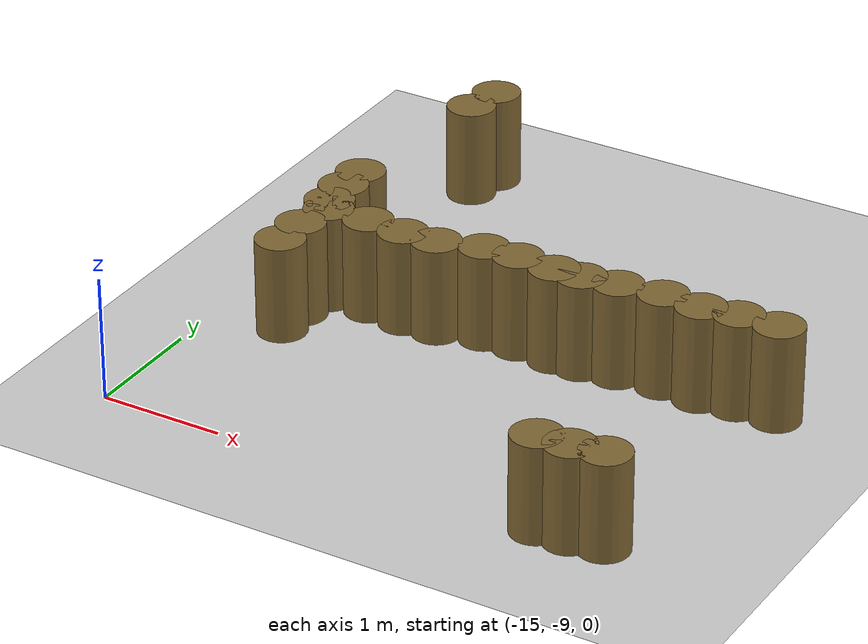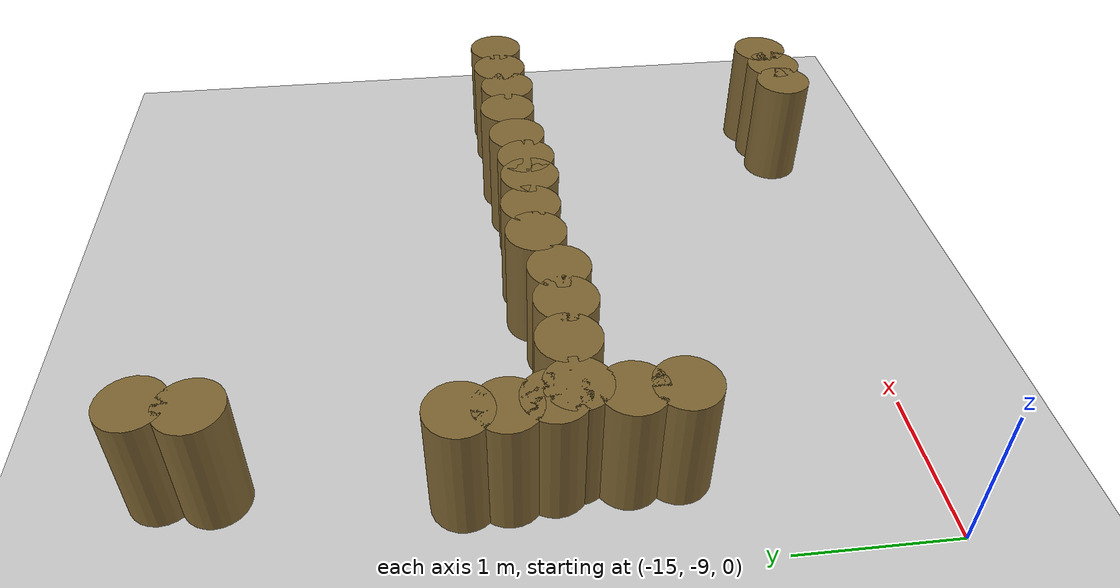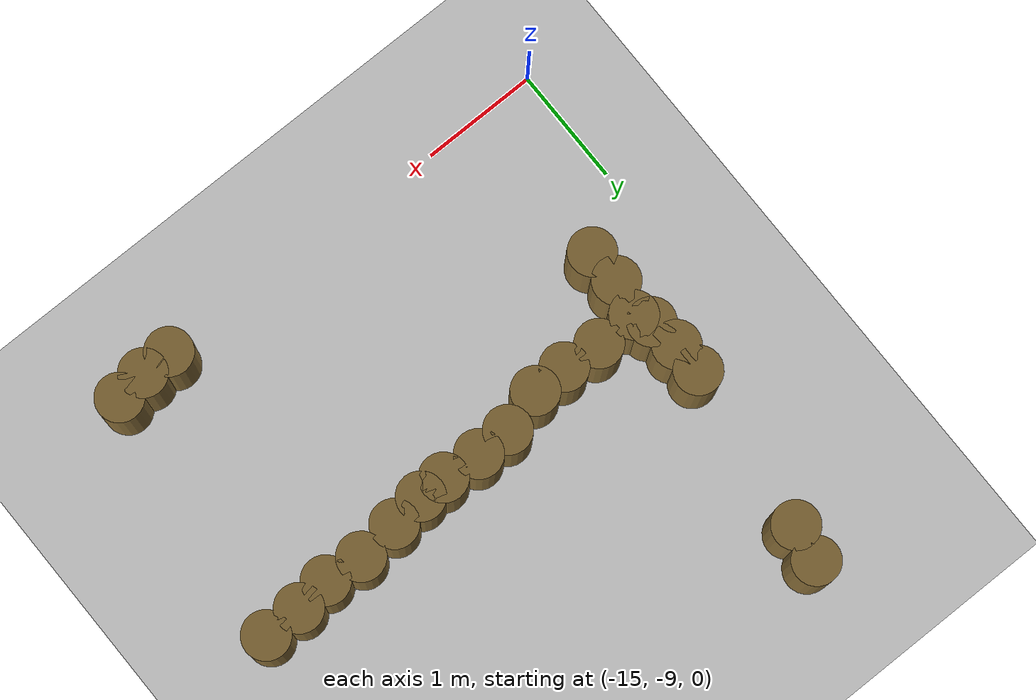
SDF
<sdf version="1.7">
 <world name="default">
  <model name="ground_plane">
   <static>1</static>
   <link name="link">
    <collision name="collision">
     <geometry><plane><normal>0 0 1</normal><size>100 100</size></plane></geometry>
     <surface><friction><ode><mu>100</mu><mu2>50</mu2></ode></friction></surface>
    </collision>
    <visual name="visual">
     <cast_shadows>0</cast_shadows>
     <geometry><plane><normal>0 0 1</normal><size>100 100</size></plane></geometry>
     <material>
      <script><uri>file://media/materials/scripts/gazebo.material</uri><name>Gazebo/Grey</name></script>
     </material>
    </visual>
   </link>
  </model>
  <model name="mini_cylinder_0_clone_0_clone_clone_clone_clone_3_clone_20">
   <link name="link">
    <inertial>
     <mass>1</mass>
     <inertia><ixx>0.145833</ixx><ixy>0</ixy><ixz>0</ixz><iyy>0.145833</iyy><iyz>0</iyz><izz>0.125</izz></inertia>
    </inertial>
    <visual name="visual">
     <geometry><cylinder><radius>0.2</radius><length>0.8</length></cylinder></geometry>
     <material>
      <script><name>Gazebo/Grey</name><uri>file://media/materials/scripts/gazebo.material</uri></script>
      <shader type="vertex"><normal_map>__default__</normal_map></shader>
      <ambient>0.5 0.4 0.2 1</ambient>
      <diffuse>0.7 0.7 0.7 1</diffuse>
      <specular>0.01 0.01 0.01 1</specular>
      <emissive>0 0 0 1</emissive>
     </material>
    </visual>
    <collision name="collision">
     <geometry><cylinder><radius>0.2</radius><length>0.8</length></cylinder></geometry>
     <surface>
      <friction>
       <ode><mu>1</mu><mu2>1</mu2><fdir1>0 0 0</fdir1><slip1>0</slip1><slip2>0</slip2></ode>
       <torsional>
        <coefficient>1</coefficient>
        <patch_radius>0</patch_radius>
        <surface_radius>0</surface_radius>
        <use_patch_radius>1</use_patch_radius>
        <ode><slip>0</slip></ode>
       </torsional>
      </friction>
      <bounce><restitution_coefficient>0</restitution_coefficient><threshold>1e+06</threshold></bounce>
      <contact>
       <collide_without_contact>0</collide_without_contact>
       <collide_without_contact_bitmask>1</collide_without_contact_bitmask>
       <collide_bitmask>1</collide_bitmask>
       <ode>
        <soft_cfm>0</soft_cfm>
        <soft_erp>0.2</soft_erp>
        <kp>1e+13</kp>
        <kd>1</kd>
        <max_vel>0.01</max_vel>
        <min_depth>0</min_depth>
       </ode>
       <bullet>
        <split_impulse>1</split_impulse>
        <split_impulse_penetration_threshold>-0.01</split_impulse_penetration_threshold>
        <soft_cfm>0</soft_cfm>
        <soft_erp>0.2</soft_erp>
        <kp>1e+13</kp>
        <kd>1</kd>
       </bullet>
      </contact>
     </surface>
    </collision>
   </link>
   <static>1</static>
   <pose>-14.2315 -4.55202 0.4 0 -0 0</pose>
  </model>
  <model name="mini_cylinder_0_clone_0_clone_clone_clone_clone_3_clone_20_clone_104">
   <link name="link">
    <inertial>
     <mass>1</mass>
     <inertia><ixx>0.145833</ixx><ixy>0</ixy><ixz>0</ixz><iyy>0.145833</iyy><iyz>0</iyz><izz>0.125</izz></inertia>
    </inertial>
    <visual name="visual">
     <geometry><cylinder><radius>0.2</radius><length>0.8</length></cylinder></geometry>
     <material>
      <script><name>Gazebo/Grey</name><uri>file://media/materials/scripts/gazebo.material</uri></script>
      <shader type="vertex"><normal_map>__default__</normal_map></shader>
      <ambient>0.5 0.4 0.2 1</ambient>
      <diffuse>0.7 0.7 0.7 1</diffuse>
      <specular>0.01 0.01 0.01 1</specular>
      <emissive>0 0 0 1</emissive>
     </material>
    </visual>
    <collision name="collision">
     <geometry><cylinder><radius>0.2</radius><length>0.8</length></cylinder></geometry>
     <surface>
      <friction>
       <ode><mu>1</mu><mu2>1</mu2><fdir1>0 0 0</fdir1><slip1>0</slip1><slip2>0</slip2></ode>
       <torsional>
        <coefficient>1</coefficient>
        <patch_radius>0</patch_radius>
        <surface_radius>0</surface_radius>
        <use_patch_radius>1</use_patch_radius>
        <ode><slip>0</slip></ode>
       </torsional>
      </friction>
      <bounce><restitution_coefficient>0</restitution_coefficient><threshold>1e+06</threshold></bounce>
      <contact>
       <collide_without_contact>0</collide_without_contact>
       <collide_without_contact_bitmask>1</collide_without_contact_bitmask>
       <collide_bitmask>1</collide_bitmask>
       <ode>
        <soft_cfm>0</soft_cfm>
        <soft_erp>0.2</soft_erp>
        <kp>1e+13</kp>
        <kd>1</kd>
        <max_vel>0.01</max_vel>
        <min_depth>0</min_depth>
       </ode>
       <bullet>
        <split_impulse>1</split_impulse>
        <split_impulse_penetration_threshold>-0.01</split_impulse_penetration_threshold>
        <soft_cfm>0</soft_cfm>
        <soft_erp>0.2</soft_erp>
        <kp>1e+13</kp>
        <kd>1</kd>
       </bullet>
      </contact>
     </surface>
    </collision>
   </link>
   <static>1</static>
   <pose>-14.2837 -4.86049 0.4 0 -0 0</pose>
  </model>
  <model name="mini_cylinder_0_clone_0_clone_clone_clone_clone_3_clone_20_clone_106">
   <link name="link">
    <inertial>
     <mass>1</mass>
     <inertia><ixx>0.145833</ixx><ixy>0</ixy><ixz>0</ixz><iyy>0.145833</iyy><iyz>0</iyz><izz>0.125</izz></inertia>
    </inertial>
    <visual name="visual">
     <geometry><cylinder><radius>0.2</radius><length>0.8</length></cylinder></geometry>
     <material>
      <script><name>Gazebo/Grey</name><uri>file://media/materials/scripts/gazebo.material</uri></script>
      <shader type="vertex"><normal_map>__default__</normal_map></shader>
      <ambient>0.5 0.4 0.2 1</ambient>
      <diffuse>0.7 0.7 0.7 1</diffuse>
      <specular>0.01 0.01 0.01 1</specular>
      <emissive>0 0 0 1</emissive>
     </material>
    </visual>
    <collision name="collision">
     <geometry><cylinder><radius>0.2</radius><length>0.8</length></cylinder></geometry>
     <surface>
      <friction>
       <ode><mu>1</mu><mu2>1</mu2><fdir1>0 0 0</fdir1><slip1>0</slip1><slip2>0</slip2></ode>
       <torsional>
        <coefficient>1</coefficient>
        <patch_radius>0</patch_radius>
        <surface_radius>0</surface_radius>
        <use_patch_radius>1</use_patch_radius>
        <ode><slip>0</slip></ode>
       </torsional>
      </friction>
      <bounce><restitution_coefficient>0</restitution_coefficient><threshold>1e+06</threshold></bounce>
      <contact>
       <collide_without_contact>0</collide_without_contact>
       <collide_without_contact_bitmask>1</collide_without_contact_bitmask>
       <collide_bitmask>1</collide_bitmask>
       <ode>
        <soft_cfm>0</soft_cfm>
        <soft_erp>0.2</soft_erp>
        <kp>1e+13</kp>
        <kd>1</kd>
        <max_vel>0.01</max_vel>
        <min_depth>0</min_depth>
       </ode>
       <bullet>
        <split_impulse>1</split_impulse>
        <split_impulse_penetration_threshold>-0.01</split_impulse_penetration_threshold>
        <soft_cfm>0</soft_cfm>
        <soft_erp>0.2</soft_erp>
        <kp>1e+13</kp>
        <kd>1</kd>
       </bullet>
      </contact>
     </surface>
    </collision>
   </link>
   <static>1</static>
   <pose>-14.3477 -6.90783 0.4 0 -0 0</pose>
  </model>
  <model name="mini_cylinder_0_clone_0_clone_clone_clone_clone_3_clone_20_clone_107">
   <link name="link">
    <inertial>
     <mass>1</mass>
     <inertia><ixx>0.145833</ixx><ixy>0</ixy><ixz>0</ixz><iyy>0.145833</iyy><iyz>0</iyz><izz>0.125</izz></inertia>
    </inertial>
    <visual name="visual">
     <geometry><cylinder><radius>0.2</radius><length>0.8</length></cylinder></geometry>
     <material>
      <script><name>Gazebo/Grey</name><uri>file://media/materials/scripts/gazebo.material</uri></script>
      <shader type="vertex"><normal_map>__default__</normal_map></shader>
      <ambient>0.5 0.4 0.2 1</ambient>
      <diffuse>0.7 0.7 0.7 1</diffuse>
      <specular>0.01 0.01 0.01 1</specular>
      <emissive>0 0 0 1</emissive>
     </material>
    </visual>
    <collision name="collision">
     <geometry><cylinder><radius>0.2</radius><length>0.8</length></cylinder></geometry>
     <surface>
      <friction>
       <ode><mu>1</mu><mu2>1</mu2><fdir1>0 0 0</fdir1><slip1>0</slip1><slip2>0</slip2></ode>
       <torsional>
        <coefficient>1</coefficient>
        <patch_radius>0</patch_radius>
        <surface_radius>0</surface_radius>
        <use_patch_radius>1</use_patch_radius>
        <ode><slip>0</slip></ode>
       </torsional>
      </friction>
      <bounce><restitution_coefficient>0</restitution_coefficient><threshold>1e+06</threshold></bounce>
      <contact>
       <collide_without_contact>0</collide_without_contact>
       <collide_without_contact_bitmask>1</collide_without_contact_bitmask>
       <collide_bitmask>1</collide_bitmask>
       <ode>
        <soft_cfm>0</soft_cfm>
        <soft_erp>0.2</soft_erp>
        <kp>1e+13</kp>
        <kd>1</kd>
        <max_vel>0.01</max_vel>
        <min_depth>0</min_depth>
       </ode>
       <bullet>
        <split_impulse>1</split_impulse>
        <split_impulse_penetration_threshold>-0.01</split_impulse_penetration_threshold>
        <soft_cfm>0</soft_cfm>
        <soft_erp>0.2</soft_erp>
        <kp>1e+13</kp>
        <kd>1</kd>
       </bullet>
      </contact>
     </surface>
    </collision>
   </link>
   <static>1</static>
   <pose>-13.9959 -6.90283 0.4 0 -0 0</pose>
  </model>
  <model name="mini_cylinder_0_clone_0_clone_clone_clone_clone_3_clone_20_clone_108">
   <link name="link">
    <inertial>
     <mass>1</mass>
     <inertia><ixx>0.145833</ixx><ixy>0</ixy><ixz>0</ixz><iyy>0.145833</iyy><iyz>0</iyz><izz>0.125</izz></inertia>
    </inertial>
    <visual name="visual">
     <geometry><cylinder><radius>0.2</radius><length>0.8</length></cylinder></geometry>
     <material>
      <script><name>Gazebo/Grey</name><uri>file://media/materials/scripts/gazebo.material</uri></script>
      <shader type="vertex"><normal_map>__default__</normal_map></shader>
      <ambient>0.5 0.4 0.2 1</ambient>
      <diffuse>0.7 0.7 0.7 1</diffuse>
      <specular>0.01 0.01 0.01 1</specular>
      <emissive>0 0 0 1</emissive>
     </material>
    </visual>
    <collision name="collision">
     <geometry><cylinder><radius>0.2</radius><length>0.8</length></cylinder></geometry>
     <surface>
      <friction>
       <ode><mu>1</mu><mu2>1</mu2><fdir1>0 0 0</fdir1><slip1>0</slip1><slip2>0</slip2></ode>
       <torsional>
        <coefficient>1</coefficient>
        <patch_radius>0</patch_radius>
        <surface_radius>0</surface_radius>
        <use_patch_radius>1</use_patch_radius>
        <ode><slip>0</slip></ode>
       </torsional>
      </friction>
      <bounce><restitution_coefficient>0</restitution_coefficient><threshold>1e+06</threshold></bounce>
      <contact>
       <collide_without_contact>0</collide_without_contact>
       <collide_without_contact_bitmask>1</collide_without_contact_bitmask>
       <collide_bitmask>1</collide_bitmask>
       <ode>
        <soft_cfm>0</soft_cfm>
        <soft_erp>0.2</soft_erp>
        <kp>1e+13</kp>
        <kd>1</kd>
        <max_vel>0.01</max_vel>
        <min_depth>0</min_depth>
       </ode>
       <bullet>
        <split_impulse>1</split_impulse>
        <split_impulse_penetration_threshold>-0.01</split_impulse_penetration_threshold>
        <soft_cfm>0</soft_cfm>
        <soft_erp>0.2</soft_erp>
        <kp>1e+13</kp>
        <kd>1</kd>
       </bullet>
      </contact>
     </surface>
    </collision>
   </link>
   <static>1</static>
   <pose>-13.6706 -6.93002 0.4 0 -0 0</pose>
  </model>
  <model name="mini_cylinder_0_clone_0_clone_clone_clone_clone_3_clone_20_clone_109">
   <link name="link">
    <inertial>
     <mass>1</mass>
     <inertia><ixx>0.145833</ixx><ixy>0</ixy><ixz>0</ixz><iyy>0.145833</iyy><iyz>0</iyz><izz>0.125</izz></inertia>
    </inertial>
    <visual name="visual">
     <geometry><cylinder><radius>0.2</radius><length>0.8</length></cylinder></geometry>
     <material>
      <script><name>Gazebo/Grey</name><uri>file://media/materials/scripts/gazebo.material</uri></script>
      <shader type="vertex"><normal_map>__default__</normal_map></shader>
      <ambient>0.5 0.4 0.2 1</ambient>
      <diffuse>0.7 0.7 0.7 1</diffuse>
      <specular>0.01 0.01 0.01 1</specular>
      <emissive>0 0 0 1</emissive>
     </material>
    </visual>
    <collision name="collision">
     <geometry><cylinder><radius>0.2</radius><length>0.8</length></cylinder></geometry>
     <surface>
      <friction>
       <ode><mu>1</mu><mu2>1</mu2><fdir1>0 0 0</fdir1><slip1>0</slip1><slip2>0</slip2></ode>
       <torsional>
        <coefficient>1</coefficient>
        <patch_radius>0</patch_radius>
        <surface_radius>0</surface_radius>
        <use_patch_radius>1</use_patch_radius>
        <ode><slip>0</slip></ode>
       </torsional>
      </friction>
      <bounce><restitution_coefficient>0</restitution_coefficient><threshold>1e+06</threshold></bounce>
      <contact>
       <collide_without_contact>0</collide_without_contact>
       <collide_without_contact_bitmask>1</collide_without_contact_bitmask>
       <collide_bitmask>1</collide_bitmask>
       <ode>
        <soft_cfm>0</soft_cfm>
        <soft_erp>0.2</soft_erp>
        <kp>1e+13</kp>
        <kd>1</kd>
        <max_vel>0.01</max_vel>
        <min_depth>0</min_depth>
       </ode>
       <bullet>
        <split_impulse>1</split_impulse>
        <split_impulse_penetration_threshold>-0.01</split_impulse_penetration_threshold>
        <soft_cfm>0</soft_cfm>
        <soft_erp>0.2</soft_erp>
        <kp>1e+13</kp>
        <kd>1</kd>
       </bullet>
      </contact>
     </surface>
    </collision>
   </link>
   <static>1</static>
   <pose>-13.3789 -6.92527 0.4 0 -0 0</pose>
  </model>
  <model name="mini_cylinder_0_clone_0_clone_clone_clone_clone_3_clone_20_clone_110">
   <link name="link">
    <inertial>
     <mass>1</mass>
     <inertia><ixx>0.145833</ixx><ixy>0</ixy><ixz>0</ixz><iyy>0.145833</iyy><iyz>0</iyz><izz>0.125</izz></inertia>
    </inertial>
    <visual name="visual">
     <geometry><cylinder><radius>0.2</radius><length>0.8</length></cylinder></geometry>
     <material>
      <script><name>Gazebo/Grey</name><uri>file://media/materials/scripts/gazebo.material</uri></script>
      <shader type="vertex"><normal_map>__default__</normal_map></shader>
      <ambient>0.5 0.4 0.2 1</ambient>
      <diffuse>0.7 0.7 0.7 1</diffuse>
      <specular>0.01 0.01 0.01 1</specular>
      <emissive>0 0 0 1</emissive>
     </material>
    </visual>
    <collision name="collision">
     <geometry><cylinder><radius>0.2</radius><length>0.8</length></cylinder></geometry>
     <surface>
      <friction>
       <ode><mu>1</mu><mu2>1</mu2><fdir1>0 0 0</fdir1><slip1>0</slip1><slip2>0</slip2></ode>
       <torsional>
        <coefficient>1</coefficient>
        <patch_radius>0</patch_radius>
        <surface_radius>0</surface_radius>
        <use_patch_radius>1</use_patch_radius>
        <ode><slip>0</slip></ode>
       </torsional>
      </friction>
      <bounce><restitution_coefficient>0</restitution_coefficient><threshold>1e+06</threshold></bounce>
      <contact>
       <collide_without_contact>0</collide_without_contact>
       <collide_without_contact_bitmask>1</collide_without_contact_bitmask>
       <collide_bitmask>1</collide_bitmask>
       <ode>
        <soft_cfm>0</soft_cfm>
        <soft_erp>0.2</soft_erp>
        <kp>1e+13</kp>
        <kd>1</kd>
        <max_vel>0.01</max_vel>
        <min_depth>0</min_depth>
       </ode>
       <bullet>
        <split_impulse>1</split_impulse>
        <split_impulse_penetration_threshold>-0.01</split_impulse_penetration_threshold>
        <soft_cfm>0</soft_cfm>
        <soft_erp>0.2</soft_erp>
        <kp>1e+13</kp>
        <kd>1</kd>
       </bullet>
      </contact>
     </surface>
    </collision>
   </link>
   <static>1</static>
   <pose>-13.0235 -6.82266 0.4 0 -0 0</pose>
  </model>
  <model name="mini_cylinder_0_clone_0_clone_clone_clone_clone_3_clone_20_clone_111">
   <link name="link">
    <inertial>
     <mass>1</mass>
     <inertia><ixx>0.145833</ixx><ixy>0</ixy><ixz>0</ixz><iyy>0.145833</iyy><iyz>0</iyz><izz>0.125</izz></inertia>
    </inertial>
    <visual name="visual">
     <geometry><cylinder><radius>0.2</radius><length>0.8</length></cylinder></geometry>
     <material>
      <script><name>Gazebo/Grey</name><uri>file://media/materials/scripts/gazebo.material</uri></script>
      <shader type="vertex"><normal_map>__default__</normal_map></shader>
      <ambient>0.5 0.4 0.2 1</ambient>
      <diffuse>0.7 0.7 0.7 1</diffuse>
      <specular>0.01 0.01 0.01 1</specular>
      <emissive>0 0 0 1</emissive>
     </material>
    </visual>
    <collision name="collision">
     <geometry><cylinder><radius>0.2</radius><length>0.8</length></cylinder></geometry>
     <surface>
      <friction>
       <ode><mu>1</mu><mu2>1</mu2><fdir1>0 0 0</fdir1><slip1>0</slip1><slip2>0</slip2></ode>
       <torsional>
        <coefficient>1</coefficient>
        <patch_radius>0</patch_radius>
        <surface_radius>0</surface_radius>
        <use_patch_radius>1</use_patch_radius>
        <ode><slip>0</slip></ode>
       </torsional>
      </friction>
      <bounce><restitution_coefficient>0</restitution_coefficient><threshold>1e+06</threshold></bounce>
      <contact>
       <collide_without_contact>0</collide_without_contact>
       <collide_without_contact_bitmask>1</collide_without_contact_bitmask>
       <collide_bitmask>1</collide_bitmask>
       <ode>
        <soft_cfm>0</soft_cfm>
        <soft_erp>0.2</soft_erp>
        <kp>1e+13</kp>
        <kd>1</kd>
        <max_vel>0.01</max_vel>
        <min_depth>0</min_depth>
       </ode>
       <bullet>
        <split_impulse>1</split_impulse>
        <split_impulse_penetration_threshold>-0.01</split_impulse_penetration_threshold>
        <soft_cfm>0</soft_cfm>
        <soft_erp>0.2</soft_erp>
        <kp>1e+13</kp>
        <kd>1</kd>
       </bullet>
      </contact>
     </surface>
    </collision>
   </link>
   <static>1</static>
   <pose>-12.7313 -6.81796 0.4 0 -0 0</pose>
  </model>
  <model name="mini_cylinder_0_clone_0_clone_clone_clone_clone_3_clone_20_clone_112">
   <link name="link">
    <inertial>
     <mass>1</mass>
     <inertia><ixx>0.145833</ixx><ixy>0</ixy><ixz>0</ixz><iyy>0.145833</iyy><iyz>0</iyz><izz>0.125</izz></inertia>
    </inertial>
    <visual name="visual">
     <geometry><cylinder><radius>0.2</radius><length>0.8</length></cylinder></geometry>
     <material>
      <script><name>Gazebo/Grey</name><uri>file://media/materials/scripts/gazebo.material</uri></script>
      <shader type="vertex"><normal_map>__default__</normal_map></shader>
      <ambient>0.5 0.4 0.2 1</ambient>
      <diffuse>0.7 0.7 0.7 1</diffuse>
      <specular>0.01 0.01 0.01 1</specular>
      <emissive>0 0 0 1</emissive>
     </material>
    </visual>
    <collision name="collision">
     <geometry><cylinder><radius>0.2</radius><length>0.8</length></cylinder></geometry>
     <surface>
      <friction>
       <ode><mu>1</mu><mu2>1</mu2><fdir1>0 0 0</fdir1><slip1>0</slip1><slip2>0</slip2></ode>
       <torsional>
        <coefficient>1</coefficient>
        <patch_radius>0</patch_radius>
        <surface_radius>0</surface_radius>
        <use_patch_radius>1</use_patch_radius>
        <ode><slip>0</slip></ode>
       </torsional>
      </friction>
      <bounce><restitution_coefficient>0</restitution_coefficient><threshold>1e+06</threshold></bounce>
      <contact>
       <collide_without_contact>0</collide_without_contact>
       <collide_without_contact_bitmask>1</collide_without_contact_bitmask>
       <collide_bitmask>1</collide_bitmask>
       <ode>
        <soft_cfm>0</soft_cfm>
        <soft_erp>0.2</soft_erp>
        <kp>1e+13</kp>
        <kd>1</kd>
        <max_vel>0.01</max_vel>
        <min_depth>0</min_depth>
       </ode>
       <bullet>
        <split_impulse>1</split_impulse>
        <split_impulse_penetration_threshold>-0.01</split_impulse_penetration_threshold>
        <soft_cfm>0</soft_cfm>
        <soft_erp>0.2</soft_erp>
        <kp>1e+13</kp>
        <kd>1</kd>
       </bullet>
      </contact>
     </surface>
    </collision>
   </link>
   <static>1</static>
   <pose>-12.4059 -6.84545 0.4 0 -0 0</pose>
  </model>
  <model name="mini_cylinder_0_clone_0_clone_clone_clone_clone_3_clone_20_clone_113">
   <link name="link">
    <inertial>
     <mass>1</mass>
     <inertia><ixx>0.145833</ixx><ixy>0</ixy><ixz>0</ixz><iyy>0.145833</iyy><iyz>0</iyz><izz>0.125</izz></inertia>
    </inertial>
    <visual name="visual">
     <geometry><cylinder><radius>0.2</radius><length>0.8</length></cylinder></geometry>
     <material>
      <script><name>Gazebo/Grey</name><uri>file://media/materials/scripts/gazebo.material</uri></script>
      <shader type="vertex"><normal_map>__default__</normal_map></shader>
      <ambient>0.5 0.4 0.2 1</ambient>
      <diffuse>0.7 0.7 0.7 1</diffuse>
      <specular>0.01 0.01 0.01 1</specular>
      <emissive>0 0 0 1</emissive>
     </material>
    </visual>
    <collision name="collision">
     <geometry><cylinder><radius>0.2</radius><length>0.8</length></cylinder></geometry>
     <surface>
      <friction>
       <ode><mu>1</mu><mu2>1</mu2><fdir1>0 0 0</fdir1><slip1>0</slip1><slip2>0</slip2></ode>
       <torsional>
        <coefficient>1</coefficient>
        <patch_radius>0</patch_radius>
        <surface_radius>0</surface_radius>
        <use_patch_radius>1</use_patch_radius>
        <ode><slip>0</slip></ode>
       </torsional>
      </friction>
      <bounce><restitution_coefficient>0</restitution_coefficient><threshold>1e+06</threshold></bounce>
      <contact>
       <collide_without_contact>0</collide_without_contact>
       <collide_without_contact_bitmask>1</collide_without_contact_bitmask>
       <collide_bitmask>1</collide_bitmask>
       <ode>
        <soft_cfm>0</soft_cfm>
        <soft_erp>0.2</soft_erp>
        <kp>1e+13</kp>
        <kd>1</kd>
        <max_vel>0.01</max_vel>
        <min_depth>0</min_depth>
       </ode>
       <bullet>
        <split_impulse>1</split_impulse>
        <split_impulse_penetration_threshold>-0.01</split_impulse_penetration_threshold>
        <soft_cfm>0</soft_cfm>
        <soft_erp>0.2</soft_erp>
        <kp>1e+13</kp>
        <kd>1</kd>
       </bullet>
      </contact>
     </surface>
    </collision>
   </link>
   <static>1</static>
   <pose>-12.1782 -6.84157 0.4 0 -0 0</pose>
  </model>
  <model name="mini_cylinder_0_clone_0_clone_clone_clone_clone_3_clone_20_clone_114">
   <link name="link">
    <inertial>
     <mass>1</mass>
     <inertia><ixx>0.145833</ixx><ixy>0</ixy><ixz>0</ixz><iyy>0.145833</iyy><iyz>0</iyz><izz>0.125</izz></inertia>
    </inertial>
    <visual name="visual">
     <geometry><cylinder><radius>0.2</radius><length>0.8</length></cylinder></geometry>
     <material>
      <script><name>Gazebo/Grey</name><uri>file://media/materials/scripts/gazebo.material</uri></script>
      <shader type="vertex"><normal_map>__default__</normal_map></shader>
      <ambient>0.5 0.4 0.2 1</ambient>
      <diffuse>0.7 0.7 0.7 1</diffuse>
      <specular>0.01 0.01 0.01 1</specular>
      <emissive>0 0 0 1</emissive>
     </material>
    </visual>
    <collision name="collision">
     <geometry><cylinder><radius>0.2</radius><length>0.8</length></cylinder></geometry>
     <surface>
      <friction>
       <ode><mu>1</mu><mu2>1</mu2><fdir1>0 0 0</fdir1><slip1>0</slip1><slip2>0</slip2></ode>
       <torsional>
        <coefficient>1</coefficient>
        <patch_radius>0</patch_radius>
        <surface_radius>0</surface_radius>
        <use_patch_radius>1</use_patch_radius>
        <ode><slip>0</slip></ode>
       </torsional>
      </friction>
      <bounce><restitution_coefficient>0</restitution_coefficient><threshold>1e+06</threshold></bounce>
      <contact>
       <collide_without_contact>0</collide_without_contact>
       <collide_without_contact_bitmask>1</collide_without_contact_bitmask>
       <collide_bitmask>1</collide_bitmask>
       <ode>
        <soft_cfm>0</soft_cfm>
        <soft_erp>0.2</soft_erp>
        <kp>1e+13</kp>
        <kd>1</kd>
        <max_vel>0.01</max_vel>
        <min_depth>0</min_depth>
       </ode>
       <bullet>
        <split_impulse>1</split_impulse>
        <split_impulse_penetration_threshold>-0.01</split_impulse_penetration_threshold>
        <soft_cfm>0</soft_cfm>
        <soft_erp>0.2</soft_erp>
        <kp>1e+13</kp>
        <kd>1</kd>
       </bullet>
      </contact>
     </surface>
    </collision>
   </link>
   <static>1</static>
   <pose>-11.8871 -6.80463 0.4 0 -0 0</pose>
  </model>
  <model name="mini_cylinder_0_clone_0_clone_clone_clone_clone_3_clone_20_clone_115">
   <link name="link">
    <inertial>
     <mass>1</mass>
     <inertia><ixx>0.145833</ixx><ixy>0</ixy><ixz>0</ixz><iyy>0.145833</iyy><iyz>0</iyz><izz>0.125</izz></inertia>
    </inertial>
    <visual name="visual">
     <geometry><cylinder><radius>0.2</radius><length>0.8</length></cylinder></geometry>
     <material>
      <script><name>Gazebo/Grey</name><uri>file://media/materials/scripts/gazebo.material</uri></script>
      <shader type="vertex"><normal_map>__default__</normal_map></shader>
      <ambient>0.5 0.4 0.2 1</ambient>
      <diffuse>0.7 0.7 0.7 1</diffuse>
      <specular>0.01 0.01 0.01 1</specular>
      <emissive>0 0 0 1</emissive>
     </material>
    </visual>
    <collision name="collision">
     <geometry><cylinder><radius>0.2</radius><length>0.8</length></cylinder></geometry>
     <surface>
      <friction>
       <ode><mu>1</mu><mu2>1</mu2><fdir1>0 0 0</fdir1><slip1>0</slip1><slip2>0</slip2></ode>
       <torsional>
        <coefficient>1</coefficient>
        <patch_radius>0</patch_radius>
        <surface_radius>0</surface_radius>
        <use_patch_radius>1</use_patch_radius>
        <ode><slip>0</slip></ode>
       </torsional>
      </friction>
      <bounce><restitution_coefficient>0</restitution_coefficient><threshold>1e+06</threshold></bounce>
      <contact>
       <collide_without_contact>0</collide_without_contact>
       <collide_without_contact_bitmask>1</collide_without_contact_bitmask>
       <collide_bitmask>1</collide_bitmask>
       <ode>
        <soft_cfm>0</soft_cfm>
        <soft_erp>0.2</soft_erp>
        <kp>1e+13</kp>
        <kd>1</kd>
        <max_vel>0.01</max_vel>
        <min_depth>0</min_depth>
       </ode>
       <bullet>
        <split_impulse>1</split_impulse>
        <split_impulse_penetration_threshold>-0.01</split_impulse_penetration_threshold>
        <soft_cfm>0</soft_cfm>
        <soft_erp>0.2</soft_erp>
        <kp>1e+13</kp>
        <kd>1</kd>
       </bullet>
      </contact>
     </surface>
    </collision>
   </link>
   <static>1</static>
   <pose>-11.5302 -6.76703 0.4 0 -0 0</pose>
  </model>
  <model name="mini_cylinder_0_clone_0_clone_clone_clone_clone_3_clone_20_clone_116">
   <link name="link">
    <inertial>
     <mass>1</mass>
     <inertia><ixx>0.145833</ixx><ixy>0</ixy><ixz>0</ixz><iyy>0.145833</iyy><iyz>0</iyz><izz>0.125</izz></inertia>
    </inertial>
    <visual name="visual">
     <geometry><cylinder><radius>0.2</radius><length>0.8</length></cylinder></geometry>
     <material>
      <script><name>Gazebo/Grey</name><uri>file://media/materials/scripts/gazebo.material</uri></script>
      <shader type="vertex"><normal_map>__default__</normal_map></shader>
      <ambient>0.5 0.4 0.2 1</ambient>
      <diffuse>0.7 0.7 0.7 1</diffuse>
      <specular>0.01 0.01 0.01 1</specular>
      <emissive>0 0 0 1</emissive>
     </material>
    </visual>
    <collision name="collision">
     <geometry><cylinder><radius>0.2</radius><length>0.8</length></cylinder></geometry>
     <surface>
      <friction>
       <ode><mu>1</mu><mu2>1</mu2><fdir1>0 0 0</fdir1><slip1>0</slip1><slip2>0</slip2></ode>
       <torsional>
        <coefficient>1</coefficient>
        <patch_radius>0</patch_radius>
        <surface_radius>0</surface_radius>
        <use_patch_radius>1</use_patch_radius>
        <ode><slip>0</slip></ode>
       </torsional>
      </friction>
      <bounce><restitution_coefficient>0</restitution_coefficient><threshold>1e+06</threshold></bounce>
      <contact>
       <collide_without_contact>0</collide_without_contact>
       <collide_without_contact_bitmask>1</collide_without_contact_bitmask>
       <collide_bitmask>1</collide_bitmask>
       <ode>
        <soft_cfm>0</soft_cfm>
        <soft_erp>0.2</soft_erp>
        <kp>1e+13</kp>
        <kd>1</kd>
        <max_vel>0.01</max_vel>
        <min_depth>0</min_depth>
       </ode>
       <bullet>
        <split_impulse>1</split_impulse>
        <split_impulse_penetration_threshold>-0.01</split_impulse_penetration_threshold>
        <soft_cfm>0</soft_cfm>
        <soft_erp>0.2</soft_erp>
        <kp>1e+13</kp>
        <kd>1</kd>
       </bullet>
      </contact>
     </surface>
    </collision>
   </link>
   <static>1</static>
   <pose>-11.2052 -6.79419 0.4 0 -0 0</pose>
  </model>
  <model name="mini_cylinder_0_clone_0_clone_clone_clone_clone_3_clone_20_clone_117">
   <link name="link">
    <inertial>
     <mass>1</mass>
     <inertia><ixx>0.145833</ixx><ixy>0</ixy><ixz>0</ixz><iyy>0.145833</iyy><iyz>0</iyz><izz>0.125</izz></inertia>
    </inertial>
    <visual name="visual">
     <geometry><cylinder><radius>0.2</radius><length>0.8</length></cylinder></geometry>
     <material>
      <script><name>Gazebo/Grey</name><uri>file://media/materials/scripts/gazebo.material</uri></script>
      <shader type="vertex"><normal_map>__default__</normal_map></shader>
      <ambient>0.5 0.4 0.2 1</ambient>
      <diffuse>0.7 0.7 0.7 1</diffuse>
      <specular>0.01 0.01 0.01 1</specular>
      <emissive>0 0 0 1</emissive>
     </material>
    </visual>
    <collision name="collision">
     <geometry><cylinder><radius>0.2</radius><length>0.8</length></cylinder></geometry>
     <surface>
      <friction>
       <ode><mu>1</mu><mu2>1</mu2><fdir1>0 0 0</fdir1><slip1>0</slip1><slip2>0</slip2></ode>
       <torsional>
        <coefficient>1</coefficient>
        <patch_radius>0</patch_radius>
        <surface_radius>0</surface_radius>
        <use_patch_radius>1</use_patch_radius>
        <ode><slip>0</slip></ode>
       </torsional>
      </friction>
      <bounce><restitution_coefficient>0</restitution_coefficient><threshold>1e+06</threshold></bounce>
      <contact>
       <collide_without_contact>0</collide_without_contact>
       <collide_without_contact_bitmask>1</collide_without_contact_bitmask>
       <collide_bitmask>1</collide_bitmask>
       <ode>
        <soft_cfm>0</soft_cfm>
        <soft_erp>0.2</soft_erp>
        <kp>1e+13</kp>
        <kd>1</kd>
        <max_vel>0.01</max_vel>
        <min_depth>0</min_depth>
       </ode>
       <bullet>
        <split_impulse>1</split_impulse>
        <split_impulse_penetration_threshold>-0.01</split_impulse_penetration_threshold>
        <soft_cfm>0</soft_cfm>
        <soft_erp>0.2</soft_erp>
        <kp>1e+13</kp>
        <kd>1</kd>
       </bullet>
      </contact>
     </surface>
    </collision>
   </link>
   <static>1</static>
   <pose>-10.9132 -6.75695 0.4 0 -0 0</pose>
  </model>
  <model name="mini_cylinder_0_clone_0_clone_clone_clone_clone_3_clone_20_clone_118">
   <link name="link">
    <inertial>
     <mass>1</mass>
     <inertia><ixx>0.145833</ixx><ixy>0</ixy><ixz>0</ixz><iyy>0.145833</iyy><iyz>0</iyz><izz>0.125</izz></inertia>
    </inertial>
    <visual name="visual">
     <geometry><cylinder><radius>0.2</radius><length>0.8</length></cylinder></geometry>
     <material>
      <script><name>Gazebo/Grey</name><uri>file://media/materials/scripts/gazebo.material</uri></script>
      <shader type="vertex"><normal_map>__default__</normal_map></shader>
      <ambient>0.5 0.4 0.2 1</ambient>
      <diffuse>0.7 0.7 0.7 1</diffuse>
      <specular>0.01 0.01 0.01 1</specular>
      <emissive>0 0 0 1</emissive>
     </material>
    </visual>
    <collision name="collision">
     <geometry><cylinder><radius>0.2</radius><length>0.8</length></cylinder></geometry>
     <surface>
      <friction>
       <ode><mu>1</mu><mu2>1</mu2><fdir1>0 0 0</fdir1><slip1>0</slip1><slip2>0</slip2></ode>
       <torsional>
        <coefficient>1</coefficient>
        <patch_radius>0</patch_radius>
        <surface_radius>0</surface_radius>
        <use_patch_radius>1</use_patch_radius>
        <ode><slip>0</slip></ode>
       </torsional>
      </friction>
      <bounce><restitution_coefficient>0</restitution_coefficient><threshold>1e+06</threshold></bounce>
      <contact>
       <collide_without_contact>0</collide_without_contact>
       <collide_without_contact_bitmask>1</collide_without_contact_bitmask>
       <collide_bitmask>1</collide_bitmask>
       <ode>
        <soft_cfm>0</soft_cfm>
        <soft_erp>0.2</soft_erp>
        <kp>1e+13</kp>
        <kd>1</kd>
        <max_vel>0.01</max_vel>
        <min_depth>0</min_depth>
       </ode>
       <bullet>
        <split_impulse>1</split_impulse>
        <split_impulse_penetration_threshold>-0.01</split_impulse_penetration_threshold>
        <soft_cfm>0</soft_cfm>
        <soft_erp>0.2</soft_erp>
        <kp>1e+13</kp>
        <kd>1</kd>
       </bullet>
      </contact>
     </surface>
    </collision>
   </link>
   <static>1</static>
   <pose>-10.5883 -6.75192 0.4 0 -0 0</pose>
  </model>
  <model name="mini_cylinder_0_clone_0_clone_clone_clone_clone_3_clone_20_clone_126">
   <link name="link">
    <inertial>
     <mass>1</mass>
     <inertia><ixx>0.145833</ixx><ixy>0</ixy><ixz>0</ixz><iyy>0.145833</iyy><iyz>0</iyz><izz>0.125</izz></inertia>
    </inertial>
    <visual name="visual">
     <geometry><cylinder><radius>0.2</radius><length>0.8</length></cylinder></geometry>
     <material>
      <script><name>Gazebo/Grey</name><uri>file://media/materials/scripts/gazebo.material</uri></script>
      <shader type="vertex"><normal_map>__default__</normal_map></shader>
      <ambient>0.5 0.4 0.2 1</ambient>
      <diffuse>0.7 0.7 0.7 1</diffuse>
      <specular>0.01 0.01 0.01 1</specular>
      <emissive>0 0 0 1</emissive>
     </material>
    </visual>
    <collision name="collision">
     <geometry><cylinder><radius>0.2</radius><length>0.8</length></cylinder></geometry>
     <surface>
      <friction>
       <ode><mu>1</mu><mu2>1</mu2><fdir1>0 0 0</fdir1><slip1>0</slip1><slip2>0</slip2></ode>
       <torsional>
        <coefficient>1</coefficient>
        <patch_radius>0</patch_radius>
        <surface_radius>0</surface_radius>
        <use_patch_radius>1</use_patch_radius>
        <ode><slip>0</slip></ode>
       </torsional>
      </friction>
      <bounce><restitution_coefficient>0</restitution_coefficient><threshold>1e+06</threshold></bounce>
      <contact>
       <collide_without_contact>0</collide_without_contact>
       <collide_without_contact_bitmask>1</collide_without_contact_bitmask>
       <collide_bitmask>1</collide_bitmask>
       <ode>
        <soft_cfm>0</soft_cfm>
        <soft_erp>0.2</soft_erp>
        <kp>1e+13</kp>
        <kd>1</kd>
        <max_vel>0.01</max_vel>
        <min_depth>0</min_depth>
       </ode>
       <bullet>
        <split_impulse>1</split_impulse>
        <split_impulse_penetration_threshold>-0.01</split_impulse_penetration_threshold>
        <soft_cfm>0</soft_cfm>
        <soft_erp>0.2</soft_erp>
        <kp>1e+13</kp>
        <kd>1</kd>
       </bullet>
      </contact>
     </surface>
    </collision>
   </link>
   <static>1</static>
   <pose>-14.4613 -6.26006 0.4 0 -0 0</pose>
  </model>
  <model name="mini_cylinder_0_clone_0_clone_clone_clone_clone_3_clone_20_clone_127">
   <link name="link">
    <inertial>
     <mass>1</mass>
     <inertia><ixx>0.145833</ixx><ixy>0</ixy><ixz>0</ixz><iyy>0.145833</iyy><iyz>0</iyz><izz>0.125</izz></inertia>
    </inertial>
    <visual name="visual">
     <geometry><cylinder><radius>0.2</radius><length>0.8</length></cylinder></geometry>
     <material>
      <script><name>Gazebo/Grey</name><uri>file://media/materials/scripts/gazebo.material</uri></script>
      <shader type="vertex"><normal_map>__default__</normal_map></shader>
      <ambient>0.5 0.4 0.2 1</ambient>
      <diffuse>0.7 0.7 0.7 1</diffuse>
      <specular>0.01 0.01 0.01 1</specular>
      <emissive>0 0 0 1</emissive>
     </material>
    </visual>
    <collision name="collision">
     <geometry><cylinder><radius>0.2</radius><length>0.8</length></cylinder></geometry>
     <surface>
      <friction>
       <ode><mu>1</mu><mu2>1</mu2><fdir1>0 0 0</fdir1><slip1>0</slip1><slip2>0</slip2></ode>
       <torsional>
        <coefficient>1</coefficient>
        <patch_radius>0</patch_radius>
        <surface_radius>0</surface_radius>
        <use_patch_radius>1</use_patch_radius>
        <ode><slip>0</slip></ode>
       </torsional>
      </friction>
      <bounce><restitution_coefficient>0</restitution_coefficient><threshold>1e+06</threshold></bounce>
      <contact>
       <collide_without_contact>0</collide_without_contact>
       <collide_without_contact_bitmask>1</collide_without_contact_bitmask>
       <collide_bitmask>1</collide_bitmask>
       <ode>
        <soft_cfm>0</soft_cfm>
        <soft_erp>0.2</soft_erp>
        <kp>1e+13</kp>
        <kd>1</kd>
        <max_vel>0.01</max_vel>
        <min_depth>0</min_depth>
       </ode>
       <bullet>
        <split_impulse>1</split_impulse>
        <split_impulse_penetration_threshold>-0.01</split_impulse_penetration_threshold>
        <soft_cfm>0</soft_cfm>
        <soft_erp>0.2</soft_erp>
        <kp>1e+13</kp>
        <kd>1</kd>
       </bullet>
      </contact>
     </surface>
    </collision>
   </link>
   <static>1</static>
   <pose>-14.4569 -6.52015 0.4 0 -0 0</pose>
  </model>
  <model name="mini_cylinder_0_clone_0_clone_clone_clone_clone_3_clone_20_clone_128">
   <link name="link">
    <inertial>
     <mass>1</mass>
     <inertia><ixx>0.145833</ixx><ixy>0</ixy><ixz>0</ixz><iyy>0.145833</iyy><iyz>0</iyz><izz>0.125</izz></inertia>
    </inertial>
    <visual name="visual">
     <geometry><cylinder><radius>0.2</radius><length>0.8</length></cylinder></geometry>
     <material>
      <script><name>Gazebo/Grey</name><uri>file://media/materials/scripts/gazebo.material</uri></script>
      <shader type="vertex"><normal_map>__default__</normal_map></shader>
      <ambient>0.5 0.4 0.2 1</ambient>
      <diffuse>0.7 0.7 0.7 1</diffuse>
      <specular>0.01 0.01 0.01 1</specular>
      <emissive>0 0 0 1</emissive>
     </material>
    </visual>
    <collision name="collision">
     <geometry><cylinder><radius>0.2</radius><length>0.8</length></cylinder></geometry>
     <surface>
      <friction>
       <ode><mu>1</mu><mu2>1</mu2><fdir1>0 0 0</fdir1><slip1>0</slip1><slip2>0</slip2></ode>
       <torsional>
        <coefficient>1</coefficient>
        <patch_radius>0</patch_radius>
        <surface_radius>0</surface_radius>
        <use_patch_radius>1</use_patch_radius>
        <ode><slip>0</slip></ode>
       </torsional>
      </friction>
      <bounce><restitution_coefficient>0</restitution_coefficient><threshold>1e+06</threshold></bounce>
      <contact>
       <collide_without_contact>0</collide_without_contact>
       <collide_without_contact_bitmask>1</collide_without_contact_bitmask>
       <collide_bitmask>1</collide_bitmask>
       <ode>
        <soft_cfm>0</soft_cfm>
        <soft_erp>0.2</soft_erp>
        <kp>1e+13</kp>
        <kd>1</kd>
        <max_vel>0.01</max_vel>
        <min_depth>0</min_depth>
       </ode>
       <bullet>
        <split_impulse>1</split_impulse>
        <split_impulse_penetration_threshold>-0.01</split_impulse_penetration_threshold>
        <soft_cfm>0</soft_cfm>
        <soft_erp>0.2</soft_erp>
        <kp>1e+13</kp>
        <kd>1</kd>
       </bullet>
      </contact>
     </surface>
    </collision>
   </link>
   <static>1</static>
   <pose>-14.4135 -7.20161 0.4 0 -0 0</pose>
  </model>
  <model name="mini_cylinder_0_clone_0_clone_clone_clone_clone_3_clone_20_clone_129">
   <link name="link">
    <inertial>
     <mass>1</mass>
     <inertia><ixx>0.145833</ixx><ixy>0</ixy><ixz>0</ixz><iyy>0.145833</iyy><iyz>0</iyz><izz>0.125</izz></inertia>
    </inertial>
    <visual name="visual">
     <geometry><cylinder><radius>0.2</radius><length>0.8</length></cylinder></geometry>
     <material>
      <script><name>Gazebo/Grey</name><uri>file://media/materials/scripts/gazebo.material</uri></script>
      <shader type="vertex"><normal_map>__default__</normal_map></shader>
      <ambient>0.5 0.4 0.2 1</ambient>
      <diffuse>0.7 0.7 0.7 1</diffuse>
      <specular>0.01 0.01 0.01 1</specular>
      <emissive>0 0 0 1</emissive>
     </material>
    </visual>
    <collision name="collision">
     <geometry><cylinder><radius>0.2</radius><length>0.8</length></cylinder></geometry>
     <surface>
      <friction>
       <ode><mu>1</mu><mu2>1</mu2><fdir1>0 0 0</fdir1><slip1>0</slip1><slip2>0</slip2></ode>
       <torsional>
        <coefficient>1</coefficient>
        <patch_radius>0</patch_radius>
        <surface_radius>0</surface_radius>
        <use_patch_radius>1</use_patch_radius>
        <ode><slip>0</slip></ode>
       </torsional>
      </friction>
      <bounce><restitution_coefficient>0</restitution_coefficient><threshold>1e+06</threshold></bounce>
      <contact>
       <collide_without_contact>0</collide_without_contact>
       <collide_without_contact_bitmask>1</collide_without_contact_bitmask>
       <collide_bitmask>1</collide_bitmask>
       <ode>
        <soft_cfm>0</soft_cfm>
        <soft_erp>0.2</soft_erp>
        <kp>1e+13</kp>
        <kd>1</kd>
        <max_vel>0.01</max_vel>
        <min_depth>0</min_depth>
       </ode>
       <bullet>
        <split_impulse>1</split_impulse>
        <split_impulse_penetration_threshold>-0.01</split_impulse_penetration_threshold>
        <soft_cfm>0</soft_cfm>
        <soft_erp>0.2</soft_erp>
        <kp>1e+13</kp>
        <kd>1</kd>
       </bullet>
      </contact>
     </surface>
    </collision>
   </link>
   <static>1</static>
   <pose>-14.4088 -7.49386 0.4 0 -0 0</pose>
  </model>
  <model name="mini_cylinder_0_clone_0_clone_clone_clone_clone_3_clone_20_clone_130">
   <link name="link">
    <inertial>
     <mass>1</mass>
     <inertia><ixx>0.145833</ixx><ixy>0</ixy><ixz>0</ixz><iyy>0.145833</iyy><iyz>0</iyz><izz>0.125</izz></inertia>
    </inertial>
    <visual name="visual">
     <geometry><cylinder><radius>0.2</radius><length>0.8</length></cylinder></geometry>
     <material>
      <script><name>Gazebo/Grey</name><uri>file://media/materials/scripts/gazebo.material</uri></script>
      <shader type="vertex"><normal_map>__default__</normal_map></shader>
      <ambient>0.5 0.4 0.2 1</ambient>
      <diffuse>0.7 0.7 0.7 1</diffuse>
      <specular>0.01 0.01 0.01 1</specular>
      <emissive>0 0 0 1</emissive>
     </material>
    </visual>
    <collision name="collision">
     <geometry><cylinder><radius>0.2</radius><length>0.8</length></cylinder></geometry>
     <surface>
      <friction>
       <ode><mu>1</mu><mu2>1</mu2><fdir1>0 0 0</fdir1><slip1>0</slip1><slip2>0</slip2></ode>
       <torsional>
        <coefficient>1</coefficient>
        <patch_radius>0</patch_radius>
        <surface_radius>0</surface_radius>
        <use_patch_radius>1</use_patch_radius>
        <ode><slip>0</slip></ode>
       </torsional>
      </friction>
      <bounce><restitution_coefficient>0</restitution_coefficient><threshold>1e+06</threshold></bounce>
      <contact>
       <collide_without_contact>0</collide_without_contact>
       <collide_without_contact_bitmask>1</collide_without_contact_bitmask>
       <collide_bitmask>1</collide_bitmask>
       <ode>
        <soft_cfm>0</soft_cfm>
        <soft_erp>0.2</soft_erp>
        <kp>1e+13</kp>
        <kd>1</kd>
        <max_vel>0.01</max_vel>
        <min_depth>0</min_depth>
       </ode>
       <bullet>
        <split_impulse>1</split_impulse>
        <split_impulse_penetration_threshold>-0.01</split_impulse_penetration_threshold>
        <soft_cfm>0</soft_cfm>
        <soft_erp>0.2</soft_erp>
        <kp>1e+13</kp>
        <kd>1</kd>
       </bullet>
      </contact>
     </surface>
    </collision>
   </link>
   <static>1</static>
   <pose>-14.4203 -6.77935 0.4 0 -0 0</pose>
  </model>
  <model name="mini_cylinder_0_clone_0_clone_clone_clone_clone_3_clone_20_clone_135">
   <link name="link">
    <inertial>
     <mass>1</mass>
     <inertia><ixx>0.145833</ixx><ixy>0</ixy><ixz>0</ixz><iyy>0.145833</iyy><iyz>0</iyz><izz>0.125</izz></inertia>
    </inertial>
    <visual name="visual">
     <geometry><cylinder><radius>0.2</radius><length>0.8</length></cylinder></geometry>
     <material>
      <script><name>Gazebo/Grey</name><uri>file://media/materials/scripts/gazebo.material</uri></script>
      <shader type="vertex"><normal_map>__default__</normal_map></shader>
      <ambient>0.5 0.4 0.2 1</ambient>
      <diffuse>0.7 0.7 0.7 1</diffuse>
      <specular>0.01 0.01 0.01 1</specular>
      <emissive>0 0 0 1</emissive>
     </material>
    </visual>
    <collision name="collision">
     <geometry><cylinder><radius>0.2</radius><length>0.8</length></cylinder></geometry>
     <surface>
      <friction>
       <ode><mu>1</mu><mu2>1</mu2><fdir1>0 0 0</fdir1><slip1>0</slip1><slip2>0</slip2></ode>
       <torsional>
        <coefficient>1</coefficient>
        <patch_radius>0</patch_radius>
        <surface_radius>0</surface_radius>
        <use_patch_radius>1</use_patch_radius>
        <ode><slip>0</slip></ode>
       </torsional>
      </friction>
      <bounce><restitution_coefficient>0</restitution_coefficient><threshold>1e+06</threshold></bounce>
      <contact>
       <collide_without_contact>0</collide_without_contact>
       <collide_without_contact_bitmask>1</collide_without_contact_bitmask>
       <collide_bitmask>1</collide_bitmask>
       <ode>
        <soft_cfm>0</soft_cfm>
        <soft_erp>0.2</soft_erp>
        <kp>1e+13</kp>
        <kd>1</kd>
        <max_vel>0.01</max_vel>
        <min_depth>0</min_depth>
       </ode>
       <bullet>
        <split_impulse>1</split_impulse>
        <split_impulse_penetration_threshold>-0.01</split_impulse_penetration_threshold>
        <soft_cfm>0</soft_cfm>
        <soft_erp>0.2</soft_erp>
        <kp>1e+13</kp>
        <kd>1</kd>
       </bullet>
      </contact>
     </surface>
    </collision>
   </link>
   <static>1</static>
   <pose>-10.8464 -8.90016 0.4 0 -0 0</pose>
  </model>
  <model name="mini_cylinder_0_clone_0_clone_clone_clone_clone_3_clone_20_clone_136">
   <link name="link">
    <inertial>
     <mass>1</mass>
     <inertia><ixx>0.145833</ixx><ixy>0</ixy><ixz>0</ixz><iyy>0.145833</iyy><iyz>0</iyz><izz>0.125</izz></inertia>
    </inertial>
    <visual name="visual">
     <geometry><cylinder><radius>0.2</radius><length>0.8</length></cylinder></geometry>
     <material>
      <script><name>Gazebo/Grey</name><uri>file://media/materials/scripts/gazebo.material</uri></script>
      <shader type="vertex"><normal_map>__default__</normal_map></shader>
      <ambient>0.5 0.4 0.2 1</ambient>
      <diffuse>0.7 0.7 0.7 1</diffuse>
      <specular>0.01 0.01 0.01 1</specular>
      <emissive>0 0 0 1</emissive>
     </material>
    </visual>
    <collision name="collision">
     <geometry><cylinder><radius>0.2</radius><length>0.8</length></cylinder></geometry>
     <surface>
      <friction>
       <ode><mu>1</mu><mu2>1</mu2><fdir1>0 0 0</fdir1><slip1>0</slip1><slip2>0</slip2></ode>
       <torsional>
        <coefficient>1</coefficient>
        <patch_radius>0</patch_radius>
        <surface_radius>0</surface_radius>
        <use_patch_radius>1</use_patch_radius>
        <ode><slip>0</slip></ode>
       </torsional>
      </friction>
      <bounce><restitution_coefficient>0</restitution_coefficient><threshold>1e+06</threshold></bounce>
      <contact>
       <collide_without_contact>0</collide_without_contact>
       <collide_without_contact_bitmask>1</collide_without_contact_bitmask>
       <collide_bitmask>1</collide_bitmask>
       <ode>
        <soft_cfm>0</soft_cfm>
        <soft_erp>0.2</soft_erp>
        <kp>1e+13</kp>
        <kd>1</kd>
        <max_vel>0.01</max_vel>
        <min_depth>0</min_depth>
       </ode>
       <bullet>
        <split_impulse>1</split_impulse>
        <split_impulse_penetration_threshold>-0.01</split_impulse_penetration_threshold>
        <soft_cfm>0</soft_cfm>
        <soft_erp>0.2</soft_erp>
        <kp>1e+13</kp>
        <kd>1</kd>
       </bullet>
      </contact>
     </surface>
    </collision>
   </link>
   <static>1</static>
   <pose>-11.1057 -8.93675 0.4 0 -0 0</pose>
  </model>
  <model name="mini_cylinder_0_clone_0_clone_clone_clone_clone_3_clone_20_clone_137">
   <link name="link">
    <inertial>
     <mass>1</mass>
     <inertia><ixx>0.145833</ixx><ixy>0</ixy><ixz>0</ixz><iyy>0.145833</iyy><iyz>0</iyz><izz>0.125</izz></inertia>
    </inertial>
    <visual name="visual">
     <geometry><cylinder><radius>0.2</radius><length>0.8</length></cylinder></geometry>
     <material>
      <script><name>Gazebo/Grey</name><uri>file://media/materials/scripts/gazebo.material</uri></script>
      <shader type="vertex"><normal_map>__default__</normal_map></shader>
      <ambient>0.5 0.4 0.2 1</ambient>
      <diffuse>0.7 0.7 0.7 1</diffuse>
      <specular>0.01 0.01 0.01 1</specular>
      <emissive>0 0 0 1</emissive>
     </material>
    </visual>
    <collision name="collision">
     <geometry><cylinder><radius>0.2</radius><length>0.8</length></cylinder></geometry>
     <surface>
      <friction>
       <ode><mu>1</mu><mu2>1</mu2><fdir1>0 0 0</fdir1><slip1>0</slip1><slip2>0</slip2></ode>
       <torsional>
        <coefficient>1</coefficient>
        <patch_radius>0</patch_radius>
        <surface_radius>0</surface_radius>
        <use_patch_radius>1</use_patch_radius>
        <ode><slip>0</slip></ode>
       </torsional>
      </friction>
      <bounce><restitution_coefficient>0</restitution_coefficient><threshold>1e+06</threshold></bounce>
      <contact>
       <collide_without_contact>0</collide_without_contact>
       <collide_without_contact_bitmask>1</collide_without_contact_bitmask>
       <collide_bitmask>1</collide_bitmask>
       <ode>
        <soft_cfm>0</soft_cfm>
        <soft_erp>0.2</soft_erp>
        <kp>1e+13</kp>
        <kd>1</kd>
        <max_vel>0.01</max_vel>
        <min_depth>0</min_depth>
       </ode>
       <bullet>
        <split_impulse>1</split_impulse>
        <split_impulse_penetration_threshold>-0.01</split_impulse_penetration_threshold>
        <soft_cfm>0</soft_cfm>
        <soft_erp>0.2</soft_erp>
        <kp>1e+13</kp>
        <kd>1</kd>
       </bullet>
      </contact>
     </surface>
    </collision>
   </link>
   <static>1</static>
   <pose>-11.3652 -8.94089 0.4 0 -0 0</pose>
  </model>
 </world>
</sdf>
